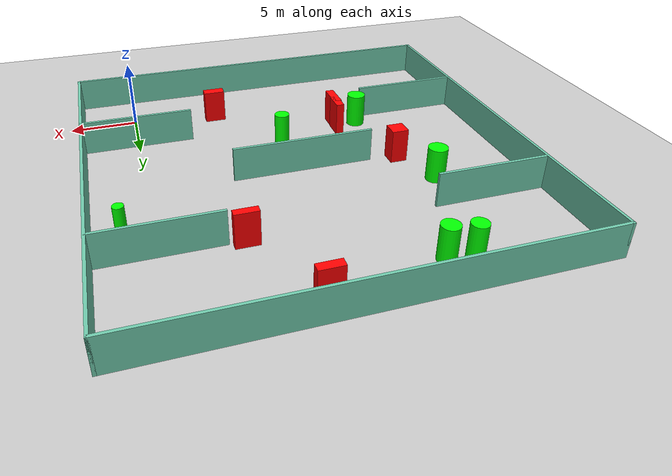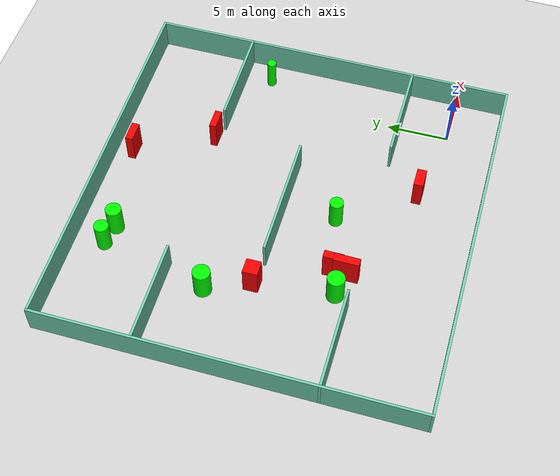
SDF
<sdf version="1.7">
 <world name="default">
  <light name="sun" type="directional">
   <pose>0 0 10 0 -0 0</pose>
   <diffuse>0.8 0.8 0.8 1</diffuse>
   <specular>0.2 0.2 0.2 1</specular>
   <attenuation>
    <range>1000</range>
    <constant>0.9</constant>
    <linear>0.01</linear>
    <quadratic>0.001</quadratic>
   </attenuation>
   <direction>-0.5 0.1 -0.9</direction>
   <spot><inner_angle>0</inner_angle><outer_angle>0</outer_angle><falloff>0</falloff></spot>
  </light>
  <model name="ground_plane">
   <static>1</static>
   <link name="link">
    <collision name="collision">
     <geometry><plane><normal>0 0 1</normal><size>100 100</size></plane></geometry>
     <surface>
      <contact><collide_bitmask>65535</collide_bitmask></contact>
      <friction><ode><mu>100</mu><mu2>50</mu2></ode></friction>
     </surface>
    </collision>
    <visual name="visual">
     <cast_shadows>0</cast_shadows>
     <geometry><plane><normal>0 0 1</normal><size>100 100</size></plane></geometry>
     <material>
      <script><uri>file://media/materials/scripts/gazebo.material</uri><name>Gazebo/Grey</name></script>
     </material>
    </visual>
   </link>
  </model>
  <gravity>0 0 -9.8</gravity>
  <magnetic_field>6e-06 2.3e-05 -4.2e-05</magnetic_field>
  <atmosphere type="adiabatic"/>
  <physics type="ode">
   <max_step_size>0.001</max_step_size>
   <real_time_factor>1</real_time_factor>
   <real_time_update_rate>1000</real_time_update_rate>
  </physics>
  <scene><ambient>0.4 0.4 0.4 1</ambient><background>0.7 0.7 0.7 1</background><shadows>1</shadows></scene>
  <spherical_coordinates>
   <surface_model>EARTH_WGS84</surface_model>
   <latitude_deg>0</latitude_deg>
   <longitude_deg>0</longitude_deg>
   <elevation>0</elevation>
   <heading_deg>0</heading_deg>
  </spherical_coordinates>
  <model name="my_base_walls">
   <link name="Wall_10">
    <collision name="Wall_10_Collision">
     <geometry><box><size>8.2 0.2 2.5</size></box></geometry>
     <pose>0 0 1.25 0 -0 0</pose>
    </collision>
    <visual name="Wall_10_Visual">
     <pose>0 0 1.25 0 -0 0</pose>
     <geometry><box><size>8.2 0.2 2.5</size></box></geometry>
     <material>
      <script><uri>file://media/materials/scripts/gazebo.material</uri><name>Gazebo/Grey</name></script>
      <ambient>0.435294 0.796078 0.67451 1</ambient>
     </material>
     <meta><layer>0</layer></meta>
    </visual>
    <pose>-11 -7 0 0 -0 0</pose>
   </link>
   <link name="Wall_12">
    <collision name="Wall_12_Collision">
     <geometry><box><size>8.2 0.2 2.5</size></box></geometry>
     <pose>0 0 1.25 0 -0 0</pose>
    </collision>
    <visual name="Wall_12_Visual">
     <pose>0 0 1.25 0 -0 0</pose>
     <geometry><box><size>8.2 0.2 2.5</size></box></geometry>
     <material>
      <script><uri>file://media/materials/scripts/gazebo.material</uri><name>Gazebo/Grey</name></script>
      <ambient>0.435294 0.796078 0.67451 1</ambient>
     </material>
     <meta><layer>0</layer></meta>
    </visual>
    <pose>-11 7 0 0 -0 0</pose>
   </link>
   <link name="Wall_14">
    <collision name="Wall_14_Collision">
     <geometry><box><size>8.2 0.2 2.5</size></box></geometry>
     <pose>0 0 1.25 0 -0 0</pose>
    </collision>
    <visual name="Wall_14_Visual">
     <pose>0 0 1.25 0 -0 0</pose>
     <geometry><box><size>8.2 0.2 2.5</size></box></geometry>
     <material>
      <script><uri>file://media/materials/scripts/gazebo.material</uri><name>Gazebo/Grey</name></script>
      <ambient>0.435294 0.796078 0.67451 1</ambient>
     </material>
     <meta><layer>0</layer></meta>
    </visual>
    <pose>11 7 0 0 -0 3.14159</pose>
   </link>
   <link name="Wall_16">
    <collision name="Wall_16_Collision">
     <geometry><box><size>10.2 0.2 2.5</size></box></geometry>
     <pose>0 0 1.25 0 -0 0</pose>
    </collision>
    <visual name="Wall_16_Visual">
     <pose>0 0 1.25 0 -0 0</pose>
     <geometry><box><size>10.2 0.2 2.5</size></box></geometry>
     <material>
      <script><uri>file://media/materials/scripts/gazebo.material</uri><name>Gazebo/Grey</name></script>
      <ambient>0.435294 0.796078 0.67451 1</ambient>
     </material>
     <meta><layer>0</layer></meta>
    </visual>
    <pose>0 0 0 0 -0 3.14159</pose>
   </link>
   <link name="Wall_2">
    <collision name="Wall_2_Collision">
     <geometry><box><size>30.2 0.2 2.5</size></box></geometry>
     <pose>0 0 1.25 0 -0 0</pose>
    </collision>
    <visual name="Wall_2_Visual">
     <pose>0 0 1.25 0 -0 0</pose>
     <geometry><box><size>30.2 0.2 2.5</size></box></geometry>
     <material>
      <script><uri>file://media/materials/scripts/gazebo.material</uri><name>Gazebo/Grey</name></script>
      <ambient>0.435294 0.796078 0.67451 1</ambient>
     </material>
     <meta><layer>0</layer></meta>
    </visual>
    <pose>0 -15 0 0 -0 3.14159</pose>
   </link>
   <link name="Wall_3">
    <collision name="Wall_3_Collision">
     <geometry><box><size>30.2 0.2 2.5</size></box></geometry>
     <pose>0 0 1.25 0 -0 0</pose>
    </collision>
    <visual name="Wall_3_Visual">
     <pose>0 0 1.25 0 -0 0</pose>
     <geometry><box><size>30.2 0.2 2.5</size></box></geometry>
     <material>
      <script><uri>file://media/materials/scripts/gazebo.material</uri><name>Gazebo/Grey</name></script>
      <ambient>0.435294 0.796078 0.67451 1</ambient>
     </material>
     <meta><layer>0</layer></meta>
    </visual>
    <pose>-15 0 0 0 -0 1.5708</pose>
   </link>
   <link name="Wall_4">
    <collision name="Wall_4_Collision">
     <geometry><box><size>30.2 0.2 2.5</size></box></geometry>
     <pose>0 0 1.25 0 -0 0</pose>
    </collision>
    <visual name="Wall_4_Visual">
     <pose>0 0 1.25 0 -0 0</pose>
     <geometry><box><size>30.2 0.2 2.5</size></box></geometry>
     <material>
      <script><uri>file://media/materials/scripts/gazebo.material</uri><name>Gazebo/Grey</name></script>
      <ambient>0.435294 0.796078 0.67451 1</ambient>
     </material>
     <meta><layer>0</layer></meta>
    </visual>
    <pose>0 15 0 0 -0 0</pose>
   </link>
   <link name="Wall_6">
    <collision name="Wall_6_Collision">
     <geometry><box><size>30.2 0.2 2.5</size></box></geometry>
     <pose>0 0 1.25 0 -0 0</pose>
    </collision>
    <visual name="Wall_6_Visual">
     <pose>0 0 1.25 0 -0 0</pose>
     <geometry><box><size>30.2 0.2 2.5</size></box></geometry>
     <material>
      <script><uri>file://media/materials/scripts/gazebo.material</uri><name>Gazebo/Grey</name></script>
      <ambient>0.435294 0.796078 0.67451 1</ambient>
     </material>
     <meta><layer>0</layer></meta>
    </visual>
    <pose>15 0 0 0 -0 1.5708</pose>
   </link>
   <link name="Wall_8">
    <collision name="Wall_8_Collision">
     <geometry><box><size>8.2 0.2 2.5</size></box></geometry>
     <pose>0 0 1.25 0 -0 0</pose>
    </collision>
    <visual name="Wall_8_Visual">
     <pose>0 0 1.25 0 -0 0</pose>
     <geometry><box><size>8.2 0.2 2.5</size></box></geometry>
     <material>
      <script><uri>file://media/materials/scripts/gazebo.material</uri><name>Gazebo/Grey</name></script>
      <ambient>0.435294 0.796078 0.67451 1</ambient>
     </material>
     <meta><layer>0</layer></meta>
    </visual>
    <pose>11 -7 0 0 -0 3.14159</pose>
   </link>
   <static>1</static>
   <pose>-11 11 0 0 -0 0</pose>
  </model>
  <model name="cylinder1">
   <static>1</static>
   <link name="link">
    <inertial>
     <mass>1</mass>
     <inertia><ixx>0.5</ixx><ixy>0</ixy><ixz>0</ixz><iyy>0.5</iyy><iyz>0</iyz><izz>1</izz></inertia>
    </inertial>
    <collision name="collision">
     <geometry><cylinder><radius>0.6283647399445913</radius><length>2.5</length></cylinder></geometry>
    </collision>
    <visual name="visual">
     <geometry><cylinder><radius>0.6283647399445913</radius><length>2.5</length></cylinder></geometry>
     <material>
      <ambient>0 1 0 1</ambient>
      <diffuse>0 1 0 1</diffuse>
      <specular>0.1 0.1 0.1 1</specular>
      <emissive>0 0 0 0</emissive>
     </material>
    </visual>
   </link>
   <pose>-15.945324125577862 23.160299487813425 1.25 0 0 0</pose>
  </model>
  <model name="cylinder2">
   <static>1</static>
   <link name="link">
    <inertial>
     <mass>1</mass>
     <inertia><ixx>0.5</ixx><ixy>0</ixy><ixz>0</ixz><iyy>0.5</iyy><iyz>0</iyz><izz>1</izz></inertia>
    </inertial>
    <collision name="collision">
     <geometry><cylinder><radius>0.6946810713867974</radius><length>2.5</length></cylinder></geometry>
    </collision>
    <visual name="visual">
     <geometry><cylinder><radius>0.6946810713867974</radius><length>2.5</length></cylinder></geometry>
     <material>
      <ambient>0 1 0 1</ambient>
      <diffuse>0 1 0 1</diffuse>
      <specular>0.1 0.1 0.1 1</specular>
      <emissive>0 0 0 0</emissive>
     </material>
    </visual>
   </link>
   <pose>-19.463498061778015 14.849610979461914 1.25 0 0 0</pose>
  </model>
  <model name="cylinder3">
   <static>1</static>
   <link name="link">
    <inertial>
     <mass>1</mass>
     <inertia><ixx>0.5</ixx><ixy>0</ixy><ixz>0</ixz><iyy>0.5</iyy><iyz>0</iyz><izz>1</izz></inertia>
    </inertial>
    <collision name="collision">
     <geometry><cylinder><radius>0.5807139083407318</radius><length>2.5</length></cylinder></geometry>
    </collision>
    <visual name="visual">
     <geometry><cylinder><radius>0.5807139083407318</radius><length>2.5</length></cylinder></geometry>
     <material>
      <ambient>0 1 0 1</ambient>
      <diffuse>0 1 0 1</diffuse>
      <specular>0.1 0.1 0.1 1</specular>
      <emissive>0 0 0 0</emissive>
     </material>
    </visual>
   </link>
   <pose>-17.63510408097152 23.489436621711484 1.25 0 0 0</pose>
  </model>
  <model name="cylinder4">
   <static>1</static>
   <link name="link">
    <inertial>
     <mass>1</mass>
     <inertia><ixx>0.5</ixx><ixy>0</ixy><ixz>0</ixz><iyy>0.5</iyy><iyz>0</iyz><izz>1</izz></inertia>
    </inertial>
    <collision name="collision">
     <geometry><cylinder><radius>0.5452171744241626</radius><length>2.5</length></cylinder></geometry>
    </collision>
    <visual name="visual">
     <geometry><cylinder><radius>0.5452171744241626</radius><length>2.5</length></cylinder></geometry>
     <material>
      <ambient>0 1 0 1</ambient>
      <diffuse>0 1 0 1</diffuse>
      <specular>0.1 0.1 0.1 1</specular>
      <emissive>0 0 0 0</emissive>
     </material>
    </visual>
   </link>
   <pose>-10.561681566599587 6.798931512238251 1.25 0 0 0</pose>
  </model>
  <model name="cylinder5">
   <static>1</static>
   <link name="link">
    <inertial>
     <mass>1</mass>
     <inertia><ixx>0.5</ixx><ixy>0</ixy><ixz>0</ixz><iyy>0.5</iyy><iyz>0</iyz><izz>1</izz></inertia>
    </inertial>
    <collision name="collision">
     <geometry><cylinder><radius>0.6952794105307165</radius><length>2.5</length></cylinder></geometry>
    </collision>
    <visual name="visual">
     <geometry><cylinder><radius>0.6952794105307165</radius><length>2.5</length></cylinder></geometry>
     <material>
      <ambient>0 1 0 1</ambient>
      <diffuse>0 1 0 1</diffuse>
      <specular>0.1 0.1 0.1 1</specular>
      <emissive>0 0 0 0</emissive>
     </material>
    </visual>
   </link>
   <pose>-17.21259699084598 5.11445166982983 1.25 0 0 0</pose>
  </model>
  <model name="cylinder6">
   <static>1</static>
   <link name="link">
    <inertial>
     <mass>1</mass>
     <inertia><ixx>0.5</ixx><ixy>0</ixy><ixz>0</ixz><iyy>0.5</iyy><iyz>0</iyz><izz>1</izz></inertia>
    </inertial>
    <collision name="collision">
     <geometry><cylinder><radius>0.37001569989692085</radius><length>2.5</length></cylinder></geometry>
    </collision>
    <visual name="visual">
     <geometry><cylinder><radius>0.37001569989692085</radius><length>2.5</length></cylinder></geometry>
     <material>
      <ambient>0 1 0 1</ambient>
      <diffuse>0 1 0 1</diffuse>
      <specular>0.1 0.1 0.1 1</specular>
      <emissive>0 0 0 0</emissive>
     </material>
    </visual>
   </link>
   <pose>2.0206548836551264 15.72824931791249 1.25 0 0 0</pose>
  </model>
  <model name="box1">
   <static>1</static>
   <link name="link">
    <inertial>
     <mass>1</mass>
     <inertia><ixx>0.083</ixx><ixy>0</ixy><ixz>0</ixz><iyy>0.083</iyy><iyz>0</iyz><izz>0.083</izz></inertia>
    </inertial>
    <collision name="collision">
     <geometry><box><size>1.2132766055866742 1.180732982680302 2.5</size></box></geometry>
    </collision>
    <visual name="visual">
     <geometry><box><size>1.2132766055866742 1.180732982680302 2.5</size></box></geometry>
     <material>
      <ambient>1 0 0 1</ambient>
      <diffuse>1 0 0 1</diffuse>
      <specular>0.1 0.1 0.1 1</specular>
      <emissive>0 0 0 0</emissive>
     </material>
    </visual>
    <sensor name="my_contact" type="contact">
     <contact><collision>box_collision</collision><topic>__default_topic__</topic></contact>
    </sensor>
   </link>
   <pose>-17.992006024470815 11.375554088557896 1.25 0 0 0</pose>
  </model>
  <model name="box2">
   <static>1</static>
   <link name="link">
    <inertial>
     <mass>1</mass>
     <inertia><ixx>0.083</ixx><ixy>0</ixy><ixz>0</ixz><iyy>0.083</iyy><iyz>0</iyz><izz>0.083</izz></inertia>
    </inertial>
    <collision name="collision">
     <geometry><box><size>1.5636054351730377 0.7542684397839037 2.5</size></box></geometry>
    </collision>
    <visual name="visual">
     <geometry><box><size>1.5636054351730377 0.7542684397839037 2.5</size></box></geometry>
     <material>
      <ambient>1 0 0 1</ambient>
      <diffuse>1 0 0 1</diffuse>
      <specular>0.1 0.1 0.1 1</specular>
      <emissive>0 0 0 0</emissive>
     </material>
    </visual>
    <sensor name="my_contact" type="contact">
     <contact><collision>box_collision</collision><topic>__default_topic__</topic></contact>
    </sensor>
   </link>
   <pose>-6.393592818402151 1.1032254653572373 1.25 0 0 0</pose>
  </model>
  <model name="box3">
   <static>1</static>
   <link name="link">
    <inertial>
     <mass>1</mass>
     <inertia><ixx>0.083</ixx><ixy>0</ixy><ixz>0</ixz><iyy>0.083</iyy><iyz>0</iyz><izz>0.083</izz></inertia>
    </inertial>
    <collision name="collision">
     <geometry><box><size>0.5972474448566141 1.5664437009084682 2.5</size></box></geometry>
    </collision>
    <visual name="visual">
     <geometry><box><size>0.5972474448566141 1.5664437009084682 2.5</size></box></geometry>
     <material>
      <ambient>1 0 0 1</ambient>
      <diffuse>1 0 0 1</diffuse>
      <specular>0.1 0.1 0.1 1</specular>
      <emissive>0 0 0 0</emissive>
     </material>
    </visual>
    <sensor name="my_contact" type="contact">
     <contact><collision>box_collision</collision><topic>__default_topic__</topic></contact>
    </sensor>
   </link>
   <pose>-15.347947108038001 5.795600916008716 1.25 0 0 0</pose>
  </model>
  <model name="box4">
   <static>1</static>
   <link name="link">
    <inertial>
     <mass>1</mass>
     <inertia><ixx>0.083</ixx><ixy>0</ixy><ixz>0</ixz><iyy>0.083</iyy><iyz>0</iyz><izz>0.083</izz></inertia>
    </inertial>
    <collision name="collision">
     <geometry><box><size>1.6378090211378717 0.6179714498247858 2.5</size></box></geometry>
    </collision>
    <visual name="visual">
     <geometry><box><size>1.6378090211378717 0.6179714498247858 2.5</size></box></geometry>
     <material>
      <ambient>1 0 0 1</ambient>
      <diffuse>1 0 0 1</diffuse>
      <specular>0.1 0.1 0.1 1</specular>
      <emissive>0 0 0 0</emissive>
     </material>
    </visual>
    <sensor name="my_contact" type="contact">
     <contact><collision>box_collision</collision><topic>__default_topic__</topic></contact>
    </sensor>
   </link>
   <pose>-8.259163615508605 24.473791921381956 1.25 0 0 0</pose>
  </model>
  <model name="box5">
   <static>1</static>
   <link name="link">
    <inertial>
     <mass>1</mass>
     <inertia><ixx>0.083</ixx><ixy>0</ixy><ixz>0</ixz><iyy>0.083</iyy><iyz>0</iyz><izz>0.083</izz></inertia>
    </inertial>
    <collision name="collision">
     <geometry><box><size>1.626534995915775 0.5550158046848347 2.5</size></box></geometry>
    </collision>
    <visual name="visual">
     <geometry><box><size>1.626534995915775 0.5550158046848347 2.5</size></box></geometry>
     <material>
      <ambient>1 0 0 1</ambient>
      <diffuse>1 0 0 1</diffuse>
      <specular>0.1 0.1 0.1 1</specular>
      <emissive>0 0 0 0</emissive>
     </material>
    </visual>
    <sensor name="my_contact" type="contact">
     <contact><collision>box_collision</collision><topic>__default_topic__</topic></contact>
    </sensor>
   </link>
   <pose>-5.135495869156408 18.404474909008744 1.25 0 0 0</pose>
  </model>
  <model name="box6">
   <static>1</static>
   <link name="link">
    <inertial>
     <mass>1</mass>
     <inertia><ixx>0.083</ixx><ixy>0</ixy><ixz>0</ixz><iyy>0.083</iyy><iyz>0</iyz><izz>0.083</izz></inertia>
    </inertial>
    <collision name="collision">
     <geometry><box><size>0.6354051527701424 2.0212406055290018 2.5</size></box></geometry>
    </collision>
    <visual name="visual">
     <geometry><box><size>0.6354051527701424 2.0212406055290018 2.5</size></box></geometry>
     <material>
      <ambient>1 0 0 1</ambient>
      <diffuse>1 0 0 1</diffuse>
      <specular>0.1 0.1 0.1 1</specular>
      <emissive>0 0 0 0</emissive>
     </material>
    </visual>
    <sensor name="my_contact" type="contact">
     <contact><collision>box_collision</collision><topic>__default_topic__</topic></contact>
    </sensor>
   </link>
   <pose>-15.4064960690894 4.7586552251768754 1.25 0 0 0</pose>
  </model>
 </world>
</sdf>
